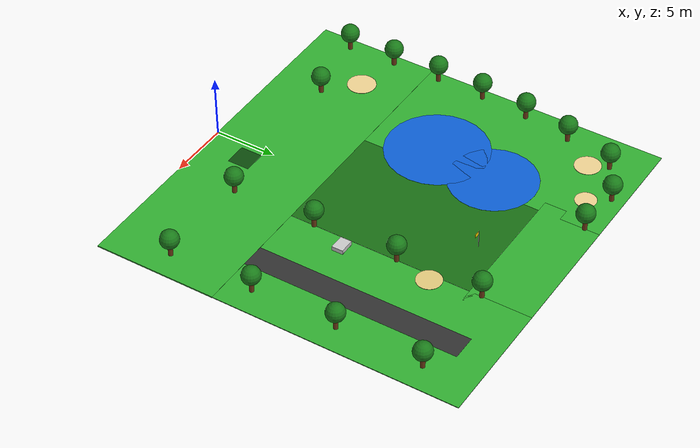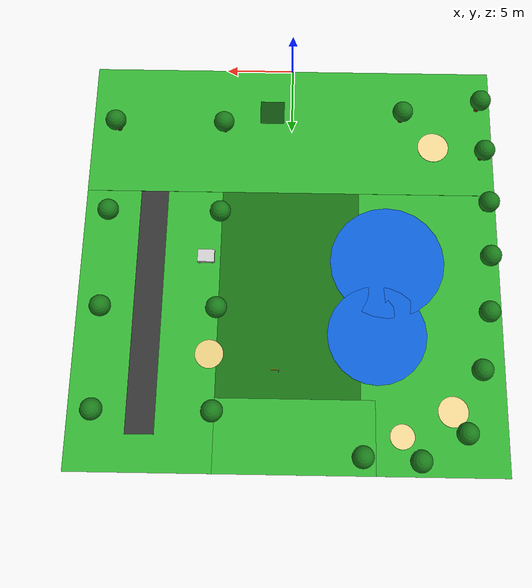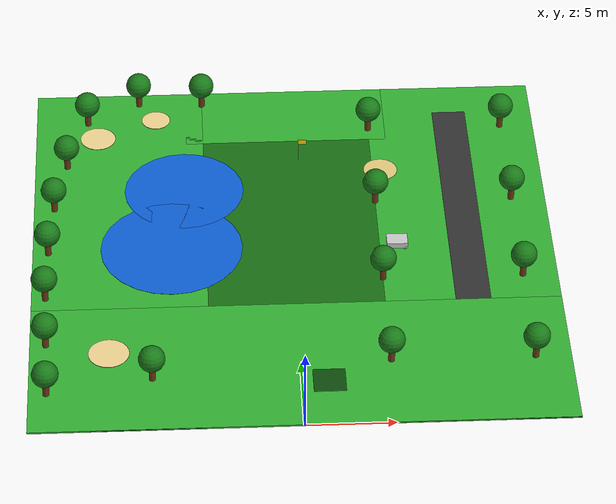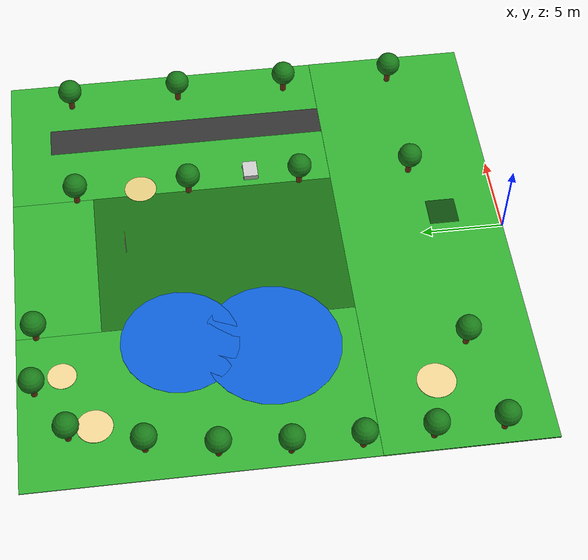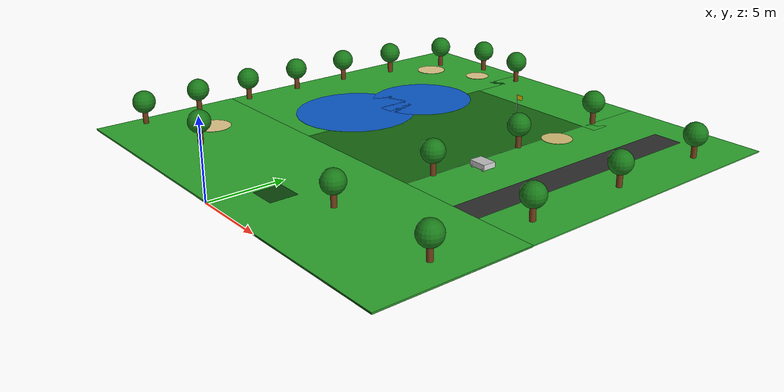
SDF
<?xml version="1.0" ?>
<sdf version="1.9">
  <world name="golf_training">

    <!-- ============================================================
         GAZEBO SYSTEM PLUGINS
    ============================================================ -->
    <plugin filename="gz-sim-physics-system"
            name="gz::sim::systems::Physics"/>

    <plugin filename="gz-sim-user-commands-system"
            name="gz::sim::systems::UserCommands"/>

    <plugin filename="gz-sim-scene-broadcaster-system"
            name="gz::sim::systems::SceneBroadcaster"/>

    <plugin filename="gz-sim-sensors-system"
            name="gz::sim::systems::Sensors">
      <render_engine>ogre</render_engine>
    </plugin>

    <plugin filename="gz-sim-imu-system"
            name="gz::sim::systems::Imu"/>

    <plugin filename="gz-sim-navsat-system"
            name="gz::sim::systems::NavSat"/>

    <!-- ============================================================
         GPS ORIGIN
    ============================================================ -->
    <spherical_coordinates>
      <surface_model>EARTH_WGS84</surface_model>
      <world_frame_orientation>ENU</world_frame_orientation>
      <latitude_deg>3.139000</latitude_deg>
      <longitude_deg>101.686900</longitude_deg>
      <elevation>0.0</elevation>
      <heading_deg>0.0</heading_deg>
    </spherical_coordinates>

    <!-- ============================================================
         SCENE
    ============================================================ -->
    <scene>
      <ambient>0.8 0.8 0.8 1</ambient>
      <background>0.5 0.7 0.9 1</background>
      <shadows>false</shadows>
    </scene>

    <!-- ============================================================
         SUN
    ============================================================ -->
    <light name="sun" type="directional">
      <cast_shadows>false</cast_shadows>
      <pose>0 0 100 0 0 0</pose>
      <diffuse>0.9 0.9 0.9 1</diffuse>
      <specular>0.1 0.1 0.1 1</specular>
      <direction>-0.5 0.1 -0.9</direction>
    </light>

    <!-- ============================================================
         CENTRAL FAIRWAY
    ============================================================ -->
    <model name="central_fairway">
      <static>true</static>
      <pose>0 15 0.05 0 0 0</pose>

      <link name="fairway_ground_link">

        <collision name="fairway_ground_collision">
          <pose>0 0 -0.01 0 0 0</pose>

          <geometry>
            <box>
              <size>10 20 0.02</size>
            </box>
          </geometry>

          <surface>
            <friction>
              <ode>
                <mu>0.75</mu>
                <mu2>0.75</mu2>
              </ode>
            </friction>
          </surface>
        </collision>

        <visual name="fairway_rough_visual">
          <pose>0 0 0.002 0 0 0</pose>

          <geometry>
            <box>
              <size>10 20 0.004</size>
            </box>
          </geometry>

          <material>
            <ambient>0.08 0.36 0.06 1</ambient>
            <diffuse>0.10 0.44 0.08 1</diffuse>
          </material>
        </visual>

      </link>

      <!-- Central flag -->
      <link name="central_flag_link">
        <pose>0.65 8.2 0 0 0 0</pose>

        <visual name="central_flag_pole_visual">
          <pose>0 0 0.75 0 0 0</pose>

          <geometry>
            <cylinder>
              <radius>0.025</radius>
              <length>1.5</length>
            </cylinder>
          </geometry>

          <material>
            <ambient>1.0 1.0 1.0 1</ambient>
            <diffuse>1.0 1.0 1.0 1</diffuse>
          </material>
        </visual>

        <visual name="central_flag_visual">
          <pose>0.25 0 1.32 0 0 0</pose>

          <geometry>
            <box>
              <size>0.50 0.02 0.30</size>
            </box>
          </geometry>

          <material>
            <ambient>1.0 0.75 0.0 1</ambient>
            <diffuse>1.0 0.85 0.0 1</diffuse>
          </material>
        </visual>

      </link>
    </model>

    <!-- ============================================================
         TEE AREA
    ============================================================ -->
    <model name="tee_area">
      <static>true</static>
      <pose>0 5 0.005 0 0 0</pose>

      <link name="tee_link">

        <collision name="tee_collision">
          <geometry>
            <box>
              <size>30 10 0.1</size>
            </box>
          </geometry>

          <surface>
            <friction>
              <ode>
                <mu>0.6</mu>
                <mu2>0.6</mu2>
              </ode>
            </friction>
          </surface>
        </collision>

        <visual name="tee_visual">
          <geometry>
            <box>
              <size>30 10 0.1</size>
            </box>
          </geometry>

          <material>
            <ambient>0.2 0.7 0.2 1</ambient>
            <diffuse>0.2 0.7 0.2 1</diffuse>
          </material>
        </visual>

      </link>
    </model>

    <!-- ============================================================
         INDEPENDENT DARK-GREEN TEE PATCH
    ============================================================ -->
    <model name="dark_green_tee_patch">
      <static>true</static>
      <pose>1.5 3.5 0.066 0 0 0</pose>

      <link name="tee_patch_link">

        <visual name="tee_patch_visual">
          <cast_shadows>false</cast_shadows>

          <geometry>
            <box>
              <size>1.8 1.8 0.01</size>
            </box>
          </geometry>

          <material>
            <ambient>0.03 0.20 0.03 1</ambient>
            <diffuse>0.05 0.30 0.05 1</diffuse>
          </material>
        </visual>

      </link>
    </model>

    <!-- ============================================================
         FAIRWAY AROUND CENTRAL AREA
    ============================================================ -->
    <model name="fairway_hollow">
      <static>true</static>
      <pose>0 0 0.01 0 0 0</pose>

      <!-- Left fairway ground -->
      <link name="link_left">
        <pose>-10 15 0 0 0 0</pose>

        <collision name="col">
          <geometry>
            <box>
              <size>10 30 0.06</size>
            </box>
          </geometry>

          <surface>
            <friction>
              <ode>
                <mu>0.6</mu>
                <mu2>0.6</mu2>
              </ode>
            </friction>
          </surface>
        </collision>

        <visual name="vis">
          <geometry>
            <box>
              <size>10 30 0.06</size>
            </box>
          </geometry>

          <material>
            <ambient>0.2 0.7 0.2 1</ambient>
            <diffuse>0.2 0.7 0.2 1</diffuse>
          </material>
        </visual>

      </link>

      <!-- Right fairway ground -->
      <link name="link_right">
        <pose>10 15 0 0 0 0</pose>

        <collision name="col">
          <geometry>
            <box>
              <size>10 30 0.06</size>
            </box>
          </geometry>

          <surface>
            <friction>
              <ode>
                <mu>0.6</mu>
                <mu2>0.6</mu2>
              </ode>
            </friction>
          </surface>
        </collision>

        <visual name="vis">
          <geometry>
            <box>
              <size>10 30 0.06</size>
            </box>
          </geometry>

          <material>
            <ambient>0.2 0.7 0.2 1</ambient>
            <diffuse>0.2 0.7 0.2 1</diffuse>
          </material>
        </visual>

      </link>

      <!-- End fairway ground -->
      <link name="link_end">
        <pose>0 27.5 0 0 0 0</pose>

        <collision name="col">
          <geometry>
            <box>
              <size>12 5 0.06</size>
            </box>
          </geometry>

          <surface>
            <friction>
              <ode>
                <mu>0.6</mu>
                <mu2>0.6</mu2>
              </ode>
            </friction>
          </surface>
        </collision>

        <visual name="vis">
          <geometry>
            <box>
              <size>12 5 0.06</size>
            </box>
          </geometry>

          <material>
            <ambient>0.2 0.7 0.2 1</ambient>
            <diffuse>0.2 0.7 0.2 1</diffuse>
          </material>
        </visual>

      </link>
    </model>

    <!-- ============================================================
         RIGHT-SIDE CART PATH
    ============================================================ -->
    <model name="elevated_cart_path">
      <static>true</static>
      <pose>10 15 0.039 0 0 0</pose>

      <link name="link_path">

        <collision name="col">
          <geometry>
            <box>
              <size>2 25 0.005</size>
            </box>
          </geometry>

          <surface>
            <friction>
              <ode>
                <mu>0.9</mu>
                <mu2>0.9</mu2>
              </ode>
            </friction>
          </surface>
        </collision>

        <visual name="vis">
          <geometry>
            <box>
              <size>2 25 0.005</size>
            </box>
          </geometry>

          <material>
            <ambient>0.15 0.15 0.15 1</ambient>
            <diffuse>0.2 0.2 0.2 1</diffuse>
          </material>
        </visual>

      </link>
    </model>

    <!-- ============================================================
         UPDATED TREE 1
    ============================================================ -->
    <model name="tree1">
      <static>true</static>
      <pose>13 5 1.0 0 0 0</pose>

      <link name="tree_link">

        <collision name="tree_collision">
          <geometry>
            <cylinder>
              <radius>0.4</radius>
              <length>2.0</length>
            </cylinder>
          </geometry>
        </collision>

        <visual name="tree_trunk_visual">
          <pose>0 0 -0.35 0 0 0</pose>

          <geometry>
            <cylinder>
              <radius>0.18</radius>
              <length>1.3</length>
            </cylinder>
          </geometry>

          <material>
            <ambient>0.35 0.18 0.07 1</ambient>
            <diffuse>0.42 0.22 0.08 1</diffuse>
          </material>
        </visual>

        <visual name="tree_crown_visual">
          <pose>0 0 0.55 0 0 0</pose>

          <geometry>
            <sphere>
              <radius>0.75</radius>
            </sphere>
          </geometry>

          <material>
            <ambient>0.08 0.35 0.08 1</ambient>
            <diffuse>0.10 0.48 0.10 1</diffuse>
          </material>
        </visual>

      </link>
    </model>

    <!-- ============================================================
         UPDATED TREE 2
    ============================================================ -->
    <model name="tree2">
      <static>true</static>
      <pose>5 5 1.0 0 0 0</pose>

      <link name="tree_link">

        <collision name="tree_collision">
          <geometry>
            <cylinder>
              <radius>0.4</radius>
              <length>2.0</length>
            </cylinder>
          </geometry>
        </collision>

        <visual name="tree_trunk_visual">
          <pose>0 0 -0.35 0 0 0</pose>

          <geometry>
            <cylinder>
              <radius>0.18</radius>
              <length>1.3</length>
            </cylinder>
          </geometry>

          <material>
            <ambient>0.35 0.18 0.07 1</ambient>
            <diffuse>0.42 0.22 0.08 1</diffuse>
          </material>
        </visual>

        <visual name="tree_crown_visual">
          <pose>0 0 0.55 0 0 0</pose>

          <geometry>
            <sphere>
              <radius>0.75</radius>
            </sphere>
          </geometry>

          <material>
            <ambient>0.08 0.35 0.08 1</ambient>
            <diffuse>0.10 0.48 0.10 1</diffuse>
          </material>
        </visual>

      </link>
    </model>

    <!-- ============================================================
         UPDATED TREE 3
    ============================================================ -->
    <model name="tree3">
      <static>true</static>
      <pose>13 12 1.0 0 0 0</pose>

      <link name="tree_link">

        <collision name="tree_collision">
          <geometry>
            <cylinder>
              <radius>0.4</radius>
              <length>2.0</length>
            </cylinder>
          </geometry>
        </collision>

        <visual name="tree_trunk_visual">
          <pose>0 0 -0.35 0 0 0</pose>

          <geometry>
            <cylinder>
              <radius>0.18</radius>
              <length>1.3</length>
            </cylinder>
          </geometry>

          <material>
            <ambient>0.35 0.18 0.07 1</ambient>
            <diffuse>0.42 0.22 0.08 1</diffuse>
          </material>
        </visual>

        <visual name="tree_crown_visual">
          <pose>0 0 0.55 0 0 0</pose>

          <geometry>
            <sphere>
              <radius>0.75</radius>
            </sphere>
          </geometry>

          <material>
            <ambient>0.08 0.35 0.08 1</ambient>
            <diffuse>0.10 0.48 0.10 1</diffuse>
          </material>
        </visual>

      </link>
    </model>

    <!-- ============================================================
         UPDATED TREE 4
    ============================================================ -->
    <model name="tree4">
      <static>true</static>
      <pose>5 12 1.0 0 0 0</pose>

      <link name="tree_link">

        <collision name="tree_collision">
          <geometry>
            <cylinder>
              <radius>0.4</radius>
              <length>2.0</length>
            </cylinder>
          </geometry>
        </collision>

        <visual name="tree_trunk_visual">
          <pose>0 0 -0.35 0 0 0</pose>

          <geometry>
            <cylinder>
              <radius>0.18</radius>
              <length>1.3</length>
            </cylinder>
          </geometry>

          <material>
            <ambient>0.35 0.18 0.07 1</ambient>
            <diffuse>0.42 0.22 0.08 1</diffuse>
          </material>
        </visual>

        <visual name="tree_crown_visual">
          <pose>0 0 0.55 0 0 0</pose>

          <geometry>
            <sphere>
              <radius>0.75</radius>
            </sphere>
          </geometry>

          <material>
            <ambient>0.08 0.35 0.08 1</ambient>
            <diffuse>0.10 0.48 0.10 1</diffuse>
          </material>
        </visual>

      </link>
    </model>

    <!-- ============================================================
         UPDATED TREE 5
    ============================================================ -->
    <model name="tree5">
      <static>true</static>
      <pose>13 19 1.0 0 0 0</pose>

      <link name="tree_link">

        <collision name="tree_collision">
          <geometry>
            <cylinder>
              <radius>0.4</radius>
              <length>2.0</length>
            </cylinder>
          </geometry>
        </collision>

        <visual name="tree_trunk_visual">
          <pose>0 0 -0.35 0 0 0</pose>

          <geometry>
            <cylinder>
              <radius>0.18</radius>
              <length>1.3</length>
            </cylinder>
          </geometry>

          <material>
            <ambient>0.35 0.18 0.07 1</ambient>
            <diffuse>0.42 0.22 0.08 1</diffuse>
          </material>
        </visual>

        <visual name="tree_crown_visual">
          <pose>0 0 0.55 0 0 0</pose>

          <geometry>
            <sphere>
              <radius>0.75</radius>
            </sphere>
          </geometry>

          <material>
            <ambient>0.08 0.35 0.08 1</ambient>
            <diffuse>0.10 0.48 0.10 1</diffuse>
          </material>
        </visual>

      </link>
    </model>

    <!-- ============================================================
         UPDATED TREE 6
    ============================================================ -->
    <model name="tree6">
      <static>true</static>
      <pose>5 19 1.0 0 0 0</pose>

      <link name="tree_link">

        <collision name="tree_collision">
          <geometry>
            <cylinder>
              <radius>0.4</radius>
              <length>2.0</length>
            </cylinder>
          </geometry>
        </collision>

        <visual name="tree_trunk_visual">
          <pose>0 0 -0.35 0 0 0</pose>

          <geometry>
            <cylinder>
              <radius>0.18</radius>
              <length>1.3</length>
            </cylinder>
          </geometry>

          <material>
            <ambient>0.35 0.18 0.07 1</ambient>
            <diffuse>0.42 0.22 0.08 1</diffuse>
          </material>
        </visual>

        <visual name="tree_crown_visual">
          <pose>0 0 0.55 0 0 0</pose>

          <geometry>
            <sphere>
              <radius>0.75</radius>
            </sphere>
          </geometry>

          <material>
            <ambient>0.08 0.35 0.08 1</ambient>
            <diffuse>0.10 0.48 0.10 1</diffuse>
          </material>
        </visual>

      </link>
    </model>

    <!-- ============================================================
         UPDATED TREE 7
    ============================================================ -->
    <model name="tree7">
      <static>true</static>
      <pose>13 26 1.0 0 0 0</pose>

      <link name="tree_link">

        <collision name="tree_collision">
          <geometry>
            <cylinder>
              <radius>0.4</radius>
              <length>2.0</length>
            </cylinder>
          </geometry>
        </collision>

        <visual name="tree_trunk_visual">
          <pose>0 0 -0.35 0 0 0</pose>

          <geometry>
            <cylinder>
              <radius>0.18</radius>
              <length>1.3</length>
            </cylinder>
          </geometry>

          <material>
            <ambient>0.35 0.18 0.07 1</ambient>
            <diffuse>0.42 0.22 0.08 1</diffuse>
          </material>
        </visual>

        <visual name="tree_crown_visual">
          <pose>0 0 0.55 0 0 0</pose>

          <geometry>
            <sphere>
              <radius>0.75</radius>
            </sphere>
          </geometry>

          <material>
            <ambient>0.08 0.35 0.08 1</ambient>
            <diffuse>0.10 0.48 0.10 1</diffuse>
          </material>
        </visual>

      </link>
    </model>

    <!-- ============================================================
         UPDATED TREE 8
    ============================================================ -->
    <model name="tree8">
      <static>true</static>
      <pose>5 26 1.0 0 0 0</pose>

      <link name="tree_link">

        <collision name="tree_collision">
          <geometry>
            <cylinder>
              <radius>0.4</radius>
              <length>2.0</length>
            </cylinder>
          </geometry>
        </collision>

        <visual name="tree_trunk_visual">
          <pose>0 0 -0.35 0 0 0</pose>

          <geometry>
            <cylinder>
              <radius>0.18</radius>
              <length>1.3</length>
            </cylinder>
          </geometry>

          <material>
            <ambient>0.35 0.18 0.07 1</ambient>
            <diffuse>0.42 0.22 0.08 1</diffuse>
          </material>
        </visual>

        <visual name="tree_crown_visual">
          <pose>0 0 0.55 0 0 0</pose>

          <geometry>
            <sphere>
              <radius>0.75</radius>
            </sphere>
          </geometry>

          <material>
            <ambient>0.08 0.35 0.08 1</ambient>
            <diffuse>0.10 0.48 0.10 1</diffuse>
          </material>
        </visual>

      </link>
    </model>

    <!-- ============================================================
         RIGHT-SIDE BUNKER
    ============================================================ -->
    <model name="bunker_circle_1">
      <static>true</static>
      <pose>5.5 22 0.041 0 0 0</pose>

      <link name="link">

        <collision name="col">
          <geometry>
            <cylinder>
              <radius>1.0</radius>
              <length>0.04</length>
            </cylinder>
          </geometry>

          <surface>
            <friction>
              <ode>
                <mu>0.8</mu>
                <mu2>0.8</mu2>
              </ode>
            </friction>
          </surface>
        </collision>

        <visual name="vis">
          <geometry>
            <cylinder>
              <radius>1.0</radius>
              <length>0.04</length>
            </cylinder>
          </geometry>

          <material>
            <ambient>0.9 0.8 0.5 1</ambient>
            <diffuse>0.9 0.8 0.5 1</diffuse>
          </material>
        </visual>

      </link>
    </model>

    <!-- ============================================================
         LEFT-SIDE VISUAL ENHANCEMENT
         No collision geometry
    ============================================================ -->
    <model name="left_course_visual_enhancement">
      <static>true</static>
      <pose>0 0 0 0 0 0</pose>

      <!-- Left lake -->
      <link name="lake_extension_middle">
        <pose>-7.0 15.2 0.052 0 0 0</pose>

        <visual name="visual">
          <cast_shadows>false</cast_shadows>

          <geometry>
            <cylinder>
              <radius>4.1</radius>
              <length>0.012</length>
            </cylinder>
          </geometry>

          <material>
            <ambient>0.02 0.25 0.65 1</ambient>
            <diffuse>0.05 0.38 0.85 1</diffuse>
            <specular>0.70 0.70 0.70 1</specular>
          </material>
        </visual>

      </link>

      <link name="lake_extension_upper">
        <pose>-6.2 20.5 0.052 0 0 0</pose>

        <visual name="visual">
          <cast_shadows>false</cast_shadows>

          <geometry>
            <cylinder>
              <radius>3.5</radius>
              <length>0.012</length>
            </cylinder>
          </geometry>

          <material>
            <ambient>0.02 0.25 0.65 1</ambient>
            <diffuse>0.05 0.38 0.85 1</diffuse>
            <specular>0.70 0.70 0.70 1</specular>
          </material>
        </visual>

      </link>

      <!-- Left bunkers -->
      <link name="left_bunker_lower">
        <pose>-10.6 6.2 0.067 0 0 0</pose>

        <visual name="visual">
          <cast_shadows>false</cast_shadows>

          <geometry>
            <cylinder>
              <radius>1.15</radius>
              <length>0.025</length>
            </cylinder>
          </geometry>

          <material>
            <ambient>0.92 0.80 0.52 1</ambient>
            <diffuse>0.95 0.84 0.58 1</diffuse>
          </material>
        </visual>

      </link>

      <link name="left_bunker_middle">
        <pose>-11.3 25.7 0.067 0 0 0</pose>

        <visual name="visual">
          <cast_shadows>false</cast_shadows>

          <geometry>
            <cylinder>
              <radius>1.05</radius>
              <length>0.025</length>
            </cylinder>
          </geometry>

          <material>
            <ambient>0.92 0.80 0.52 1</ambient>
            <diffuse>0.95 0.84 0.58 1</diffuse>
          </material>
        </visual>

      </link>

      <link name="left_bunker_upper">
        <pose>-7.8 27.4 0.067 0 0 0</pose>

        <visual name="visual">
          <cast_shadows>false</cast_shadows>

          <geometry>
            <cylinder>
              <radius>0.85</radius>
              <length>0.025</length>
            </cylinder>
          </geometry>

          <material>
            <ambient>0.92 0.80 0.52 1</ambient>
            <diffuse>0.95 0.84 0.58 1</diffuse>
          </material>
        </visual>

      </link>

      <!-- Left visual tree 1 -->
      <link name="left_visual_tree_1">
        <pose>-14.0 3.0 0 0 0 0</pose>

        <visual name="trunk">
          <pose>0 0 0.65 0 0 0</pose>

          <geometry>
            <cylinder>
              <radius>0.18</radius>
              <length>1.3</length>
            </cylinder>
          </geometry>

          <material>
            <ambient>0.35 0.18 0.07 1</ambient>
            <diffuse>0.42 0.22 0.08 1</diffuse>
          </material>
        </visual>

        <visual name="crown">
          <pose>0 0 1.55 0 0 0</pose>

          <geometry>
            <sphere>
              <radius>0.75</radius>
            </sphere>
          </geometry>

          <material>
            <ambient>0.08 0.35 0.08 1</ambient>
            <diffuse>0.10 0.48 0.10 1</diffuse>
          </material>
        </visual>

      </link>

      <!-- Left visual tree 2 -->
      <link name="left_visual_tree_2">
        <pose>-14.1 7.0 0 0 0 0</pose>

        <visual name="trunk">
          <pose>0 0 0.65 0 0 0</pose>

          <geometry>
            <cylinder>
              <radius>0.18</radius>
              <length>1.3</length>
            </cylinder>
          </geometry>

          <material>
            <ambient>0.35 0.18 0.07 1</ambient>
            <diffuse>0.42 0.22 0.08 1</diffuse>
          </material>
        </visual>

        <visual name="crown">
          <pose>0 0 1.55 0 0 0</pose>

          <geometry>
            <sphere>
              <radius>0.75</radius>
            </sphere>
          </geometry>

          <material>
            <ambient>0.08 0.35 0.08 1</ambient>
            <diffuse>0.10 0.48 0.10 1</diffuse>
          </material>
        </visual>

      </link>

      <!-- Left visual tree 3 -->
      <link name="left_visual_tree_3">
        <pose>-14.2 11.0 0 0 0 0</pose>

        <visual name="trunk">
          <pose>0 0 0.65 0 0 0</pose>

          <geometry>
            <cylinder>
              <radius>0.18</radius>
              <length>1.3</length>
            </cylinder>
          </geometry>

          <material>
            <ambient>0.35 0.18 0.07 1</ambient>
            <diffuse>0.42 0.22 0.08 1</diffuse>
          </material>
        </visual>

        <visual name="crown">
          <pose>0 0 1.55 0 0 0</pose>

          <geometry>
            <sphere>
              <radius>0.75</radius>
            </sphere>
          </geometry>

          <material>
            <ambient>0.08 0.35 0.08 1</ambient>
            <diffuse>0.10 0.48 0.10 1</diffuse>
          </material>
        </visual>

      </link>

      <!-- Left visual tree 4 -->
      <link name="left_visual_tree_4">
        <pose>-14.1 15.0 0 0 0 0</pose>

        <visual name="trunk">
          <pose>0 0 0.65 0 0 0</pose>

          <geometry>
            <cylinder>
              <radius>0.18</radius>
              <length>1.3</length>
            </cylinder>
          </geometry>

          <material>
            <ambient>0.35 0.18 0.07 1</ambient>
            <diffuse>0.42 0.22 0.08 1</diffuse>
          </material>
        </visual>

        <visual name="crown">
          <pose>0 0 1.55 0 0 0</pose>

          <geometry>
            <sphere>
              <radius>0.75</radius>
            </sphere>
          </geometry>

          <material>
            <ambient>0.08 0.35 0.08 1</ambient>
            <diffuse>0.10 0.48 0.10 1</diffuse>
          </material>
        </visual>

      </link>

      <!-- Left visual tree 5 -->
      <link name="left_visual_tree_5">
        <pose>-13.8 19.0 0 0 0 0</pose>

        <visual name="trunk">
          <pose>0 0 0.65 0 0 0</pose>

          <geometry>
            <cylinder>
              <radius>0.18</radius>
              <length>1.3</length>
            </cylinder>
          </geometry>

          <material>
            <ambient>0.35 0.18 0.07 1</ambient>
            <diffuse>0.42 0.22 0.08 1</diffuse>
          </material>
        </visual>

        <visual name="crown">
          <pose>0 0 1.55 0 0 0</pose>

          <geometry>
            <sphere>
              <radius>0.75</radius>
            </sphere>
          </geometry>

          <material>
            <ambient>0.08 0.35 0.08 1</ambient>
            <diffuse>0.10 0.48 0.10 1</diffuse>
          </material>
        </visual>

      </link>

      <!-- Left visual tree 6 -->
      <link name="left_visual_tree_6">
        <pose>-13.1 23.0 0 0 0 0</pose>

        <visual name="trunk">
          <pose>0 0 0.65 0 0 0</pose>

          <geometry>
            <cylinder>
              <radius>0.18</radius>
              <length>1.3</length>
            </cylinder>
          </geometry>

          <material>
            <ambient>0.35 0.18 0.07 1</ambient>
            <diffuse>0.42 0.22 0.08 1</diffuse>
          </material>
        </visual>

        <visual name="crown">
          <pose>0 0 1.55 0 0 0</pose>

          <geometry>
            <sphere>
              <radius>0.75</radius>
            </sphere>
          </geometry>

          <material>
            <ambient>0.08 0.35 0.08 1</ambient>
            <diffuse>0.10 0.48 0.10 1</diffuse>
          </material>
        </visual>

      </link>

      <!-- Left visual tree 7 -->
      <link name="left_visual_tree_7">
        <pose>-11.9 27.2 0 0 0 0</pose>

        <visual name="trunk">
          <pose>0 0 0.65 0 0 0</pose>

          <geometry>
            <cylinder>
              <radius>0.18</radius>
              <length>1.3</length>
            </cylinder>
          </geometry>

          <material>
            <ambient>0.35 0.18 0.07 1</ambient>
            <diffuse>0.42 0.22 0.08 1</diffuse>
          </material>
        </visual>

        <visual name="crown">
          <pose>0 0 1.55 0 0 0</pose>

          <geometry>
            <sphere>
              <radius>0.75</radius>
            </sphere>
          </geometry>

          <material>
            <ambient>0.08 0.35 0.08 1</ambient>
            <diffuse>0.10 0.48 0.10 1</diffuse>
          </material>
        </visual>

      </link>

      <!-- Left visual tree 8 -->
      <link name="left_visual_tree_8">
        <pose>-8.8 29.0 0 0 0 0</pose>

        <visual name="trunk">
          <pose>0 0 0.65 0 0 0</pose>

          <geometry>
            <cylinder>
              <radius>0.18</radius>
              <length>1.3</length>
            </cylinder>
          </geometry>

          <material>
            <ambient>0.35 0.18 0.07 1</ambient>
            <diffuse>0.42 0.22 0.08 1</diffuse>
          </material>
        </visual>

        <visual name="crown">
          <pose>0 0 1.55 0 0 0</pose>

          <geometry>
            <sphere>
              <radius>0.75</radius>
            </sphere>
          </geometry>

          <material>
            <ambient>0.08 0.35 0.08 1</ambient>
            <diffuse>0.10 0.48 0.10 1</diffuse>
          </material>
        </visual>

      </link>

      <!-- Left visual tree 9 -->
      <link name="left_visual_tree_9">
        <pose>-5.0 28.8 0 0 0 0</pose>

        <visual name="trunk">
          <pose>0 0 0.65 0 0 0</pose>

          <geometry>
            <cylinder>
              <radius>0.18</radius>
              <length>1.3</length>
            </cylinder>
          </geometry>

          <material>
            <ambient>0.35 0.18 0.07 1</ambient>
            <diffuse>0.42 0.22 0.08 1</diffuse>
          </material>
        </visual>

        <visual name="crown">
          <pose>0 0 1.55 0 0 0</pose>

          <geometry>
            <sphere>
              <radius>0.75</radius>
            </sphere>
          </geometry>

          <material>
            <ambient>0.08 0.35 0.08 1</ambient>
            <diffuse>0.10 0.48 0.10 1</diffuse>
          </material>
        </visual>

      </link>

      <!-- Left visual tree 10 -->
      <link name="left_visual_tree_10">
        <pose>-8.2 4.0 0 0 0 0</pose>

        <visual name="trunk">
          <pose>0 0 0.65 0 0 0</pose>

          <geometry>
            <cylinder>
              <radius>0.18</radius>
              <length>1.3</length>
            </cylinder>
          </geometry>

          <material>
            <ambient>0.35 0.18 0.07 1</ambient>
            <diffuse>0.42 0.22 0.08 1</diffuse>
          </material>
        </visual>

        <visual name="crown">
          <pose>0 0 1.55 0 0 0</pose>

          <geometry>
            <sphere>
              <radius>0.75</radius>
            </sphere>
          </geometry>

          <material>
            <ambient>0.08 0.35 0.08 1</ambient>
            <diffuse>0.10 0.48 0.10 1</diffuse>
          </material>
        </visual>

      </link>
    </model>

    <!-- ============================================================
         STATIC GOLF CART
    ============================================================ -->
    <model name="golf_cart_1">
      <static>true</static>
      <pose>6 15 0.30 0 0 1.5708</pose>

      <link name="body_link">

        <collision name="body_collision">
          <geometry>
            <box>
              <size>0.9 1.2 0.35</size>
            </box>
          </geometry>
        </collision>

        <visual name="body_visual">
          <geometry>
            <box>
              <size>0.9 1.2 0.35</size>
            </box>
          </geometry>

          <material>
            <ambient>0.8 0.8 0.8 1</ambient>
            <diffuse>0.8 0.8 0.8 1</diffuse>
          </material>
        </visual>

      </link>

      <link name="wheel_fl">
        <pose>-0.35 0.45 -0.16 1.5708 0 0</pose>

        <collision name="collision">
          <geometry>
            <cylinder>
              <radius>0.13</radius>
              <length>0.09</length>
            </cylinder>
          </geometry>
        </collision>

        <visual name="visual">
          <geometry>
            <cylinder>
              <radius>0.13</radius>
              <length>0.09</length>
            </cylinder>
          </geometry>
        </visual>

      </link>

      <link name="wheel_fr">
        <pose>0.35 0.45 -0.16 1.5708 0 0</pose>

        <collision name="collision">
          <geometry>
            <cylinder>
              <radius>0.13</radius>
              <length>0.09</length>
            </cylinder>
          </geometry>
        </collision>

        <visual name="visual">
          <geometry>
            <cylinder>
              <radius>0.13</radius>
              <length>0.09</length>
            </cylinder>
          </geometry>
        </visual>

      </link>

      <link name="wheel_rl">
        <pose>-0.35 -0.45 -0.16 1.5708 0 0</pose>

        <collision name="collision">
          <geometry>
            <cylinder>
              <radius>0.13</radius>
              <length>0.09</length>
            </cylinder>
          </geometry>
        </collision>

        <visual name="visual">
          <geometry>
            <cylinder>
              <radius>0.13</radius>
              <length>0.09</length>
            </cylinder>
          </geometry>
        </visual>

      </link>

      <link name="wheel_rr">
        <pose>0.35 -0.45 -0.16 1.5708 0 0</pose>

        <collision name="collision">
          <geometry>
            <cylinder>
              <radius>0.13</radius>
              <length>0.09</length>
            </cylinder>
          </geometry>
        </collision>

        <visual name="visual">
          <geometry>
            <cylinder>
              <radius>0.13</radius>
              <length>0.09</length>
            </cylinder>
          </geometry>
        </visual>

      </link>
    </model>

  </world>
</sdf>
